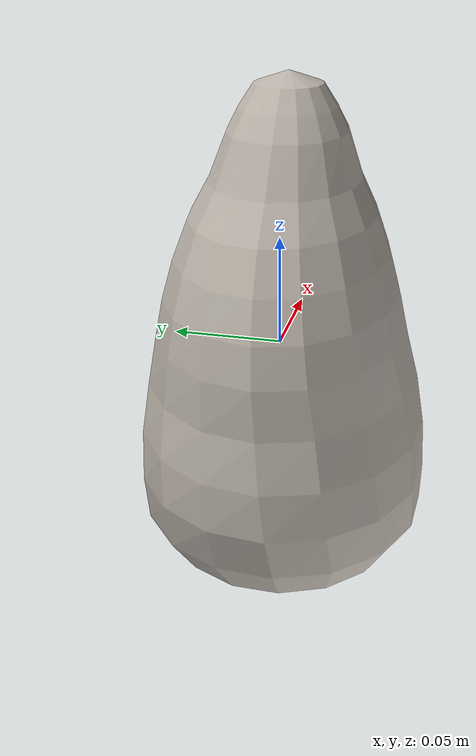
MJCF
<mujoco model="Lettuce_17">
  <compiler autolimits="true" boundmass="0.01" angle="radian"/>
  <default>
    <default class="/">
      <default class="__VISUAL_MJT__">
        <geom contype="0" conaffinity="0" group="0"/>
      </default>
      <default class="__STRUCTURAL_MJT__">
        <geom contype="8" conaffinity="15" group="4" friction="0.90000000000000002 0.90000000000000002 0.001" solref="0.025000000000000001 1" solimp="0.998 0.998 0.001"/>
      </default>
      <default class="__DYNAMIC_MJT__">
        <geom contype="1" conaffinity="15" group="4" friction="0.90000000000000002 0.90000000000000002 0.001" solref="0.025000000000000001 1" solimp="0.998 0.998 0.001"/>
      </default>
    </default>
  </default>
  <asset>
    <texture name="Lettuce2_Mat" type="2d" file="Lettuce2_AlbedoTransparency.png"/>
    <material name="material_Lettuce2_Mat" class="/" texture="Lettuce2_Mat" specular="0.5" shininess="0.5" rgba="1 1 1 1"/>
    <mesh name="Lettuce_17_lettuce_b7" class="/" file="Lettuce_17_lettuce_b7/Lettuce_17_lettuce_b7.obj" scale="1 1 1"/>
  </asset>
  <worldbody>
    <body name="Lettuce_17">
      <joint name="Lettuce_17_free" class="/" type="free" pos="0 0 0" axis="0 0 1" stiffness="0" range="0 0" armature="0" damping="0.10000000000000001" frictionloss="0"/>
      <body name="Lettuce_17_lettuce_b7" pos="0.00042999999999999999 -0.0013600000000000001 0.0046600000000000001" quat="1 0 0 0">
        <geom name="Lettuce_17_lettuce_b7" class="__VISUAL_MJT__" type="mesh" material="material_Lettuce2_Mat" shellinertia="true" mesh="Lettuce_17_lettuce_b7"/>
        <geom name="Lettuce_17_PrimitiveCollider_0" class="__DYNAMIC_MJT__" type="capsule" size="0.068497031927108765 0.01176346093416214" rgba="0 1 0 1" pos="0.00042564293835312128 0.0013582613319158554 -0.043479796499013901" quat="0.99999999999891198 1.4751396607739272e-06 0 0"/>
        <geom name="Lettuce_17_PrimitiveCollider_1" class="__DYNAMIC_MJT__" type="capsule" size="0.036121398210525513 0.027375265955924988" rgba="0 1 0 1" pos="-0.0014094095677137375 -0.0031273816712200642 0.05092255026102066" quat="0.99999999999891198 1.4751396607739272e-06 0 0"/>
        <geom name="Lettuce_17_PrimitiveCollider_2" class="__DYNAMIC_MJT__" type="capsule" size="0.059300273656845093 0.011589258909225464" rgba="0 1 0 1" pos="-0.0004735216498374939 -5.076313391327858e-05 0.013545721769332886" quat="0.99999999999891198 1.4751396607739272e-06 0 0"/>
      </body>
    </body>
  </worldbody>
</mujoco>
